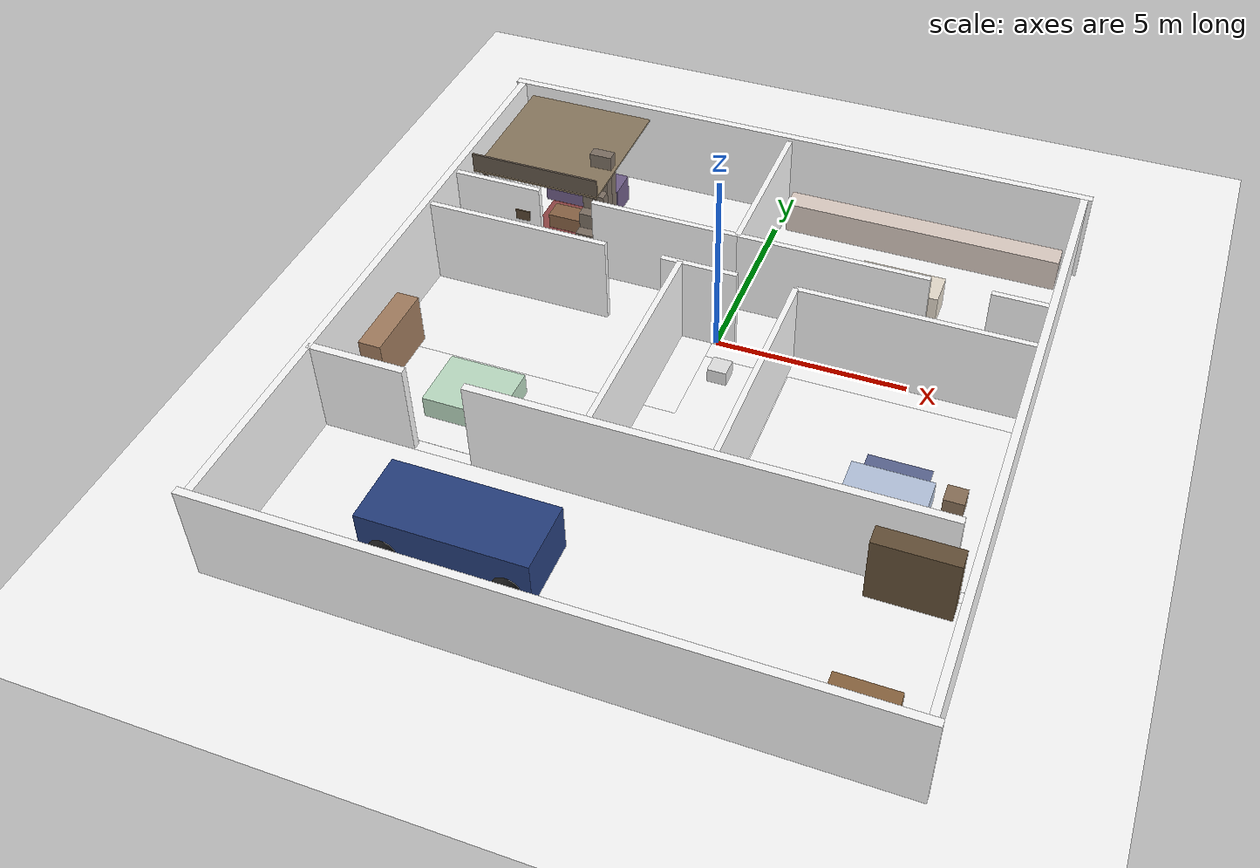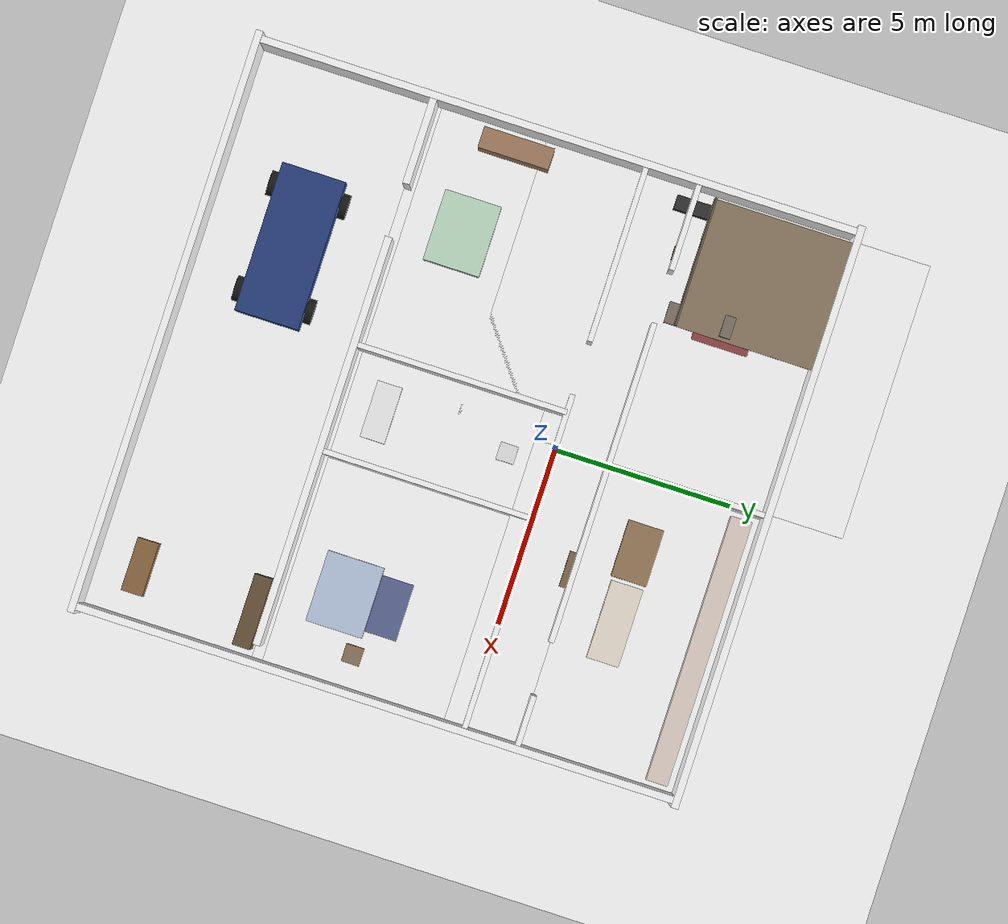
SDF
<sdf version="1.8">
 <world name="house">
  <physics name="4ms" type="ignored">
   <max_step_size>0.004</max_step_size>
   <real_time_factor>1</real_time_factor>
  </physics>
  <plugin filename="ignition-gazebo-physics-system" name="ignition::gazebo::systems::Physics"/>
  <plugin filename="ignition-gazebo-user-commands-system" name="ignition::gazebo::systems::UserCommands"/>
  <plugin filename="ignition-gazebo-scene-broadcaster-system" name="ignition::gazebo::systems::SceneBroadcaster"/>
  <plugin filename="ignition-gazebo-sensors-system" name="ignition::gazebo::systems::Sensors">
   <render_engine>ogre2</render_engine>
  </plugin>
  <plugin filename="ignition-gazebo-contact-system" name="ignition::gazebo::systems::Contact"/>
  <plugin filename="ignition-gazebo-imu-system" name="ignition::gazebo::systems::Imu"/>
  <light name="sun" type="directional">
   <pose>0 0 12 0 0 0</pose>
   <intensity>1</intensity>
   <direction>-0.3 0.1 -0.9</direction>
   <diffuse>1.0 0.97 0.90 1</diffuse>
   <specular>0.2 0.2 0.2 1</specular>
  </light>
  <light name="ceiling_living" type="point">
   <pose>-4 3 3 0 0 0</pose>
   <diffuse>0.9 0.85 0.75 1</diffuse>
   <specular>0.1 0.1 0.1 1</specular>
   <attenuation><range>12</range><linear>0.08</linear></attenuation>
  </light>
  <light name="ceiling_kitchen" type="point">
   <pose>4 4 3 0 0 0</pose>
   <diffuse>0.9 0.9 0.85 1</diffuse>
   <specular>0.1 0.1 0.1 1</specular>
   <attenuation><range>10</range><linear>0.1</linear></attenuation>
  </light>
  <light name="ceiling_hall" type="point">
   <pose>0 0.5 3 0 0 0</pose>
   <diffuse>0.8 0.8 0.8 1</diffuse>
   <specular>0.1 0.1 0.1 1</specular>
   <attenuation><range>12</range><linear>0.1</linear></attenuation>
  </light>
  <light name="ceiling_garage" type="point">
   <pose>0 -8.5 3 0 0 0</pose>
   <diffuse>0.75 0.75 0.78 1</diffuse>
   <specular>0.1 0.1 0.1 1</specular>
   <attenuation><range>16</range><linear>0.08</linear></attenuation>
  </light>
  <light name="ceiling_loft" type="point">
   <pose>-6 4 2.7 0 0 0</pose>
   <diffuse>0.85 0.82 0.72 1</diffuse>
   <specular>0.1 0.1 0.1 1</specular>
   <attenuation><range>8</range><linear>0.15</linear></attenuation>
  </light>
  <model name="ground_plane">
   <static>true</static>
   <link name="link">
    <collision name="c"><geometry><plane><normal>0 0 1</normal><size>100 100</size></plane></geometry></collision>
    <visual name="v">
     <geometry><plane><normal>0 0 1</normal><size>100 100</size></plane></geometry>
     <material>
      <ambient>0.6 0.6 0.6 1</ambient>
      <diffuse>1 1 1 1</diffuse>
      <pbr><metal><albedo_map>model://textures/concrete.png</albedo_map><roughness>0.9</roughness></metal></pbr>
     </material>
    </visual>
   </link>
  </model>
  <model name="floor_living">
   <static>true</static>
   <pose>-4 2.7 0.003 0 0 0</pose>
   <link name="link">
    <collision name="c"><geometry><box><size>7.8 11 0.004</size></box></geometry></collision>
    <visual name="v">
     <geometry><box><size>7.8 11 0.004</size></box></geometry>
     <material>
      <ambient>0.6 0.6 0.6 1</ambient>
      <diffuse>1 1 1 1</diffuse>
      <pbr><metal><albedo_map>model://textures/wood_plank.png</albedo_map><roughness>0.7</roughness></metal></pbr>
     </material>
    </visual>
   </link>
  </model>
  <model name="floor_kitchen">
   <static>true</static>
   <pose>4 3.7 0.003 0 0 0</pose>
   <link name="link">
    <collision name="c"><geometry><box><size>7.8 4.4 0.004</size></box></geometry></collision>
    <visual name="v">
     <geometry><box><size>7.8 4.4 0.004</size></box></geometry>
     <material>
      <ambient>0.6 0.6 0.6 1</ambient>
      <diffuse>1 1 1 1</diffuse>
      <pbr><metal><albedo_map>model://textures/tile_kitchen.png</albedo_map><roughness>0.5</roughness></metal></pbr>
     </material>
    </visual>
   </link>
  </model>
  <model name="floor_bed1">
   <static>true</static>
   <pose>5 -3.2 0.003 0 0 0</pose>
   <link name="link">
    <collision name="c"><geometry><box><size>5.8 5.2 0.004</size></box></geometry></collision>
    <visual name="v">
     <geometry><box><size>5.8 5.2 0.004</size></box></geometry>
     <material>
      <ambient>0.6 0.6 0.6 1</ambient>
      <diffuse>1 1 1 1</diffuse>
      <pbr><metal><albedo_map>model://textures/carpet_blue.png</albedo_map><roughness>0.95</roughness></metal></pbr>
     </material>
    </visual>
   </link>
  </model>
  <model name="floor_bed2">
   <static>true</static>
   <pose>-4.5 -3.2 0.003 0 0 0</pose>
   <link name="link">
    <collision name="c"><geometry><box><size>6.8 5.2 0.004</size></box></geometry></collision>
    <visual name="v">
     <geometry><box><size>6.8 5.2 0.004</size></box></geometry>
     <material>
      <ambient>0.6 0.6 0.6 1</ambient>
      <diffuse>1 1 1 1</diffuse>
      <pbr>
       <metal><albedo_map>model://textures/carpet_green.png</albedo_map><roughness>0.95</roughness></metal>
      </pbr>
     </material>
    </visual>
   </link>
  </model>
  <model name="floor_bath">
   <static>true</static>
   <pose>0.5 -3.2 0.003 0 0 0</pose>
   <link name="link">
    <collision name="c"><geometry><box><size>3 5.2 0.004</size></box></geometry></collision>
    <visual name="v">
     <geometry><box><size>3 5.2 0.004</size></box></geometry>
     <material>
      <ambient>0.6 0.6 0.6 1</ambient>
      <diffuse>1 1 1 1</diffuse>
      <pbr><metal><albedo_map>model://textures/tile_bath.png</albedo_map><roughness>0.5</roughness></metal></pbr>
     </material>
    </visual>
   </link>
  </model>
  <model name="floor_garage">
   <static>true</static>
   <pose>0 -8.5 0.003 0 0 0</pose>
   <link name="link">
    <collision name="c"><geometry><box><size>16 4.8 0.004</size></box></geometry></collision>
    <visual name="v">
     <geometry><box><size>16 4.8 0.004</size></box></geometry>
     <material>
      <ambient>0.6 0.6 0.6 1</ambient>
      <diffuse>1 1 1 1</diffuse>
      <pbr><metal><albedo_map>model://textures/concrete.png</albedo_map><roughness>0.9</roughness></metal></pbr>
     </material>
    </visual>
   </link>
  </model>
  <model name="wall_n">
   <static>true</static>
   <pose>0  6 1.25 0 0 0</pose>
   <link name="link">
    <collision name="c"><geometry><box><size>16.4 0.2 2.5</size></box></geometry></collision>
    <visual name="v">
     <geometry><box><size>16.4 0.2 2.5</size></box></geometry>
     <material>
      <ambient>0.6 0.6 0.6 1</ambient>
      <diffuse>1 1 1 1</diffuse>
      <pbr><metal><albedo_map>model://textures/drywall.png</albedo_map><roughness>0.85</roughness></metal></pbr>
     </material>
    </visual>
   </link>
  </model>
  <model name="wall_garage_n_a">
   <static>true</static>
   <pose>-6.75 -6 1.25 0 0 0</pose>
   <link name="link">
    <collision name="c"><geometry><box><size>2.5 0.2 2.5</size></box></geometry></collision>
    <visual name="v">
     <geometry><box><size>2.5 0.2 2.5</size></box></geometry>
     <material>
      <ambient>0.6 0.6 0.6 1</ambient>
      <diffuse>1 1 1 1</diffuse>
      <pbr><metal><albedo_map>model://textures/drywall.png</albedo_map><roughness>0.85</roughness></metal></pbr>
     </material>
    </visual>
   </link>
  </model>
  <model name="wall_garage_n_b">
   <static>true</static>
   <pose>1.75 -6 1.25 0 0 0</pose>
   <link name="link">
    <collision name="c"><geometry><box><size>11.5 0.2 2.5</size></box></geometry></collision>
    <visual name="v">
     <geometry><box><size>11.5 0.2 2.5</size></box></geometry>
     <material>
      <ambient>0.6 0.6 0.6 1</ambient>
      <diffuse>1 1 1 1</diffuse>
      <pbr><metal><albedo_map>model://textures/drywall.png</albedo_map><roughness>0.85</roughness></metal></pbr>
     </material>
    </visual>
   </link>
  </model>
  <model name="wall_s">
   <static>true</static>
   <pose>0 -11 1.3 0 0 0</pose>
   <link name="link">
    <collision name="c"><geometry><box><size>16.4 0.2 2.6</size></box></geometry></collision>
    <visual name="v">
     <geometry><box><size>16.4 0.2 2.6</size></box></geometry>
     <material>
      <ambient>0.6 0.6 0.6 1</ambient>
      <diffuse>1 1 1 1</diffuse>
      <pbr><metal><albedo_map>model://textures/concrete.png</albedo_map><roughness>0.9</roughness></metal></pbr>
     </material>
    </visual>
   </link>
  </model>
  <model name="wall_e">
   <static>true</static>
   <pose>8  -2.5 1.25 0 0 0</pose>
   <link name="link">
    <collision name="c"><geometry><box><size>0.2 17 2.5</size></box></geometry></collision>
    <visual name="v">
     <geometry><box><size>0.2 17 2.5</size></box></geometry>
     <material>
      <ambient>0.6 0.6 0.6 1</ambient>
      <diffuse>1 1 1 1</diffuse>
      <pbr><metal><albedo_map>model://textures/drywall.png</albedo_map><roughness>0.85</roughness></metal></pbr>
     </material>
    </visual>
   </link>
  </model>
  <model name="wall_w">
   <static>true</static>
   <pose>-8  -2.5 1.25 0 0 0</pose>
   <link name="link">
    <collision name="c"><geometry><box><size>0.2 17 2.5</size></box></geometry></collision>
    <visual name="v">
     <geometry><box><size>0.2 17 2.5</size></box></geometry>
     <material>
      <ambient>0.6 0.6 0.6 1</ambient>
      <diffuse>1 1 1 1</diffuse>
      <pbr><metal><albedo_map>model://textures/drywall.png</albedo_map><roughness>0.85</roughness></metal></pbr>
     </material>
    </visual>
   </link>
  </model>
  <model name="wall_A1">
   <static>true</static>
   <pose>-5.5 0 1.2 0 0 0</pose>
   <link name="link">
    <collision name="c"><geometry><box><size>5 0.15 2.4</size></box></geometry></collision>
    <visual name="v">
     <geometry><box><size>5 0.15 2.4</size></box></geometry>
     <material>
      <ambient>0.6 0.6 0.6 1</ambient>
      <diffuse>1 1 1 1</diffuse>
      <pbr><metal><albedo_map>model://textures/drywall.png</albedo_map><roughness>0.85</roughness></metal></pbr>
     </material>
    </visual>
   </link>
  </model>
  <model name="wall_A2">
   <static>true</static>
   <pose>-0.5 0 1.2 0 0 0</pose>
   <link name="link">
    <collision name="c"><geometry><box><size>2 0.15 2.4</size></box></geometry></collision>
    <visual name="v">
     <geometry><box><size>2 0.15 2.4</size></box></geometry>
     <material>
      <ambient>0.6 0.6 0.6 1</ambient>
      <diffuse>1 1 1 1</diffuse>
      <pbr><metal><albedo_map>model://textures/drywall.png</albedo_map><roughness>0.85</roughness></metal></pbr>
     </material>
    </visual>
   </link>
  </model>
  <model name="wall_A4">
   <static>true</static>
   <pose>5 0 1.2 0 0 0</pose>
   <link name="link">
    <collision name="c"><geometry><box><size>6 0.15 2.4</size></box></geometry></collision>
    <visual name="v">
     <geometry><box><size>6 0.15 2.4</size></box></geometry>
     <material>
      <ambient>0.6 0.6 0.6 1</ambient>
      <diffuse>1 1 1 1</diffuse>
      <pbr><metal><albedo_map>model://textures/drywall.png</albedo_map><roughness>0.85</roughness></metal></pbr>
     </material>
    </visual>
   </link>
  </model>
  <model name="wall_B1">
   <static>true</static>
   <pose>-6.75 1.5 1.2 0 0 0</pose>
   <link name="link">
    <collision name="c"><geometry><box><size>2.5 0.15 2.4</size></box></geometry></collision>
    <visual name="v">
     <geometry><box><size>2.5 0.15 2.4</size></box></geometry>
     <material>
      <ambient>0.6 0.6 0.6 1</ambient>
      <diffuse>1 1 1 1</diffuse>
      <pbr><metal><albedo_map>model://textures/drywall.png</albedo_map><roughness>0.85</roughness></metal></pbr>
     </material>
    </visual>
   </link>
  </model>
  <model name="wall_B2">
   <static>true</static>
   <pose>-2 1.5 1.2 0 0 0</pose>
   <link name="link">
    <collision name="c"><geometry><box><size>4 0.15 2.4</size></box></geometry></collision>
    <visual name="v">
     <geometry><box><size>4 0.15 2.4</size></box></geometry>
     <material>
      <ambient>0.6 0.6 0.6 1</ambient>
      <diffuse>1 1 1 1</diffuse>
      <pbr><metal><albedo_map>model://textures/drywall.png</albedo_map><roughness>0.85</roughness></metal></pbr>
     </material>
    </visual>
   </link>
  </model>
  <model name="wall_B3">
   <static>true</static>
   <pose>2.5 1.5 1.2 0 0 0</pose>
   <link name="link">
    <collision name="c"><geometry><box><size>5 0.15 2.4</size></box></geometry></collision>
    <visual name="v">
     <geometry><box><size>5 0.15 2.4</size></box></geometry>
     <material>
      <ambient>0.6 0.6 0.6 1</ambient>
      <diffuse>1 1 1 1</diffuse>
      <pbr><metal><albedo_map>model://textures/drywall.png</albedo_map><roughness>0.85</roughness></metal></pbr>
     </material>
    </visual>
   </link>
  </model>
  <model name="wall_B5">
   <static>true</static>
   <pose>7.25 1.5 1.2 0 0 0</pose>
   <link name="link">
    <collision name="c"><geometry><box><size>1.5 0.15 2.4</size></box></geometry></collision>
    <visual name="v">
     <geometry><box><size>1.5 0.15 2.4</size></box></geometry>
     <material>
      <ambient>0.6 0.6 0.6 1</ambient>
      <diffuse>1 1 1 1</diffuse>
      <pbr><metal><albedo_map>model://textures/drywall.png</albedo_map><roughness>0.85</roughness></metal></pbr>
     </material>
    </visual>
   </link>
  </model>
  <model name="wall_C">
   <static>true</static>
   <pose>0 3.75 1.2 0 0 0</pose>
   <link name="link">
    <collision name="c"><geometry><box><size>0.15 4.5 2.4</size></box></geometry></collision>
    <visual name="v">
     <geometry><box><size>0.15 4.5 2.4</size></box></geometry>
     <material>
      <ambient>0.6 0.6 0.6 1</ambient>
      <diffuse>1 1 1 1</diffuse>
      <pbr><metal><albedo_map>model://textures/drywall.png</albedo_map><roughness>0.85</roughness></metal></pbr>
     </material>
    </visual>
   </link>
  </model>
  <model name="wall_D">
   <static>true</static>
   <pose>-1 -3 1.2 0 0 0</pose>
   <link name="link">
    <collision name="c"><geometry><box><size>0.15 6 2.4</size></box></geometry></collision>
    <visual name="v">
     <geometry><box><size>0.15 6 2.4</size></box></geometry>
     <material>
      <ambient>0.6 0.6 0.6 1</ambient>
      <diffuse>1 1 1 1</diffuse>
      <pbr><metal><albedo_map>model://textures/drywall.png</albedo_map><roughness>0.85</roughness></metal></pbr>
     </material>
    </visual>
   </link>
  </model>
  <model name="wall_E">
   <static>true</static>
   <pose>2 -3 1.2 0 0 0</pose>
   <link name="link">
    <collision name="c"><geometry><box><size>0.15 6 2.4</size></box></geometry></collision>
    <visual name="v">
     <geometry><box><size>0.15 6 2.4</size></box></geometry>
     <material>
      <ambient>0.6 0.6 0.6 1</ambient>
      <diffuse>1 1 1 1</diffuse>
      <pbr><metal><albedo_map>model://textures/drywall.png</albedo_map><roughness>0.85</roughness></metal></pbr>
     </material>
    </visual>
   </link>
  </model>
  <model name="sofa">
   <static>true</static>
   <pose>-5.5 4.5 0.4 0 0 0</pose>
   <link name="link">
    <collision name="c"><geometry><box><size>2.2 0.8 0.8</size></box></geometry></collision>
    <visual name="v">
     <geometry><box><size>2.2 0.8 0.8</size></box></geometry>
     <material><ambient>0.45 0.38 0.55 1</ambient><diffuse>0.45 0.38 0.55 1</diffuse></material>
    </visual>
   </link>
  </model>
  <model name="coffee_table">
   <static>true</static>
   <pose>-5.5 3.2 0.22 0 0 0</pose>
   <link name="link">
    <collision name="c"><geometry><box><size>1.0 0.55 0.44</size></box></geometry></collision>
    <visual name="v">
     <geometry><box><size>1.0 0.55 0.44</size></box></geometry>
     <material><ambient>0.55 0.40 0.28 1</ambient><diffuse>0.55 0.40 0.28 1</diffuse></material>
    </visual>
   </link>
  </model>
  <model name="tv_stand">
   <static>true</static>
   <pose>-7.4 1.8 0.3 0 0 0</pose>
   <link name="link">
    <collision name="c"><geometry><box><size>0.4 1.5 0.6</size></box></geometry></collision>
    <visual name="v">
     <geometry><box><size>0.4 1.5 0.6</size></box></geometry>
     <material><ambient>0.2 0.2 0.2 1</ambient><diffuse>0.2 0.2 0.2 1</diffuse></material>
    </visual>
   </link>
  </model>
  <model name="counter_n">
   <static>true</static>
   <pose>4 5.4 0.45 0 0 0</pose>
   <link name="link">
    <collision name="c"><geometry><box><size>7.5 0.6 0.9</size></box></geometry></collision>
    <visual name="v">
     <geometry><box><size>7.5 0.6 0.9</size></box></geometry>
     <material><ambient>0.88 0.82 0.78 1</ambient><diffuse>0.88 0.82 0.78 1</diffuse></material>
    </visual>
   </link>
  </model>
  <model name="island">
   <static>true</static>
   <pose>4 3.0 0.45 0 0 0</pose>
   <link name="link">
    <collision name="c"><geometry><box><size>2.2 0.9 0.9</size></box></geometry></collision>
    <visual name="v">
     <geometry><box><size>2.2 0.9 0.9</size></box></geometry>
     <material><ambient>0.92 0.88 0.82 1</ambient><diffuse>0.92 0.88 0.82 1</diffuse></material>
    </visual>
   </link>
  </model>
  <model name="bed_1">
   <static>true</static>
   <pose>5.5 -4.2 0.3 0 0 0</pose>
   <link name="link">
    <collision name="c"><geometry><box><size>2.0 1.6 0.6</size></box></geometry></collision>
    <visual name="v">
     <geometry><box><size>2.0 1.6 0.6</size></box></geometry>
     <material><ambient>0.72 0.78 0.88 1</ambient><diffuse>0.72 0.78 0.88 1</diffuse></material>
    </visual>
   </link>
  </model>
  <model name="ns_1">
   <static>true</static>
   <pose>7.0 -3.5 0.25 0 0 0</pose>
   <link name="link">
    <collision name="c"><geometry><box><size>0.5 0.5 0.5</size></box></geometry></collision>
    <visual name="v">
     <geometry><box><size>0.5 0.5 0.5</size></box></geometry>
     <material><ambient>0.55 0.45 0.35 1</ambient><diffuse>0.55 0.45 0.35 1</diffuse></material>
    </visual>
   </link>
  </model>
  <model name="bed_2">
   <static>true</static>
   <pose>-4.8 -4.2 0.3 0 0 0</pose>
   <link name="link">
    <collision name="c"><geometry><box><size>2.0 1.6 0.6</size></box></geometry></collision>
    <visual name="v">
     <geometry><box><size>2.0 1.6 0.6</size></box></geometry>
     <material><ambient>0.75 0.88 0.78 1</ambient><diffuse>0.75 0.88 0.78 1</diffuse></material>
    </visual>
   </link>
  </model>
  <model name="wardrobe">
   <static>true</static>
   <pose>-7.4 -3.5 0.7 0 0 0</pose>
   <link name="link">
    <collision name="c"><geometry><box><size>0.6 2.0 1.4</size></box></geometry></collision>
    <visual name="v">
     <geometry><box><size>0.6 2.0 1.4</size></box></geometry>
     <material><ambient>0.65 0.50 0.38 1</ambient><diffuse>0.65 0.50 0.38 1</diffuse></material>
    </visual>
   </link>
  </model>
  <model name="bathtub">
   <static>true</static>
   <pose>0.5 -4.8 0.2 0 0 0</pose>
   <link name="link">
    <collision name="c"><geometry><box><size>1.6 0.7 0.4</size></box></geometry></collision>
    <visual name="v">
     <geometry><box><size>1.6 0.7 0.4</size></box></geometry>
     <material><ambient>0.95 0.95 0.95 1</ambient><diffuse>0.95 0.95 0.95 1</diffuse></material>
    </visual>
   </link>
  </model>
  <model name="toilet">
   <static>true</static>
   <pose>0.5 -1.2 0.2 0 0 0</pose>
   <link name="link">
    <collision name="c"><geometry><box><size>0.5 0.5 0.4</size></box></geometry></collision>
    <visual name="v">
     <geometry><box><size>0.5 0.5 0.4</size></box></geometry>
     <material><ambient>0.90 0.90 0.90 1</ambient><diffuse>0.90 0.90 0.90 1</diffuse></material>
    </visual>
   </link>
  </model>
  <model name="hall_picture_1">
   <static>true</static>
   <pose>-6 1.42 1.5 0 0 0</pose>
   <link name="link">
    <collision name="c"><geometry><box><size>0.4 0.05 0.3</size></box></geometry></collision>
    <visual name="v">
     <geometry><box><size>0.4 0.05 0.3</size></box></geometry>
     <material><ambient>0.35 0.28 0.2 1</ambient><diffuse>0.35 0.28 0.2 1</diffuse></material>
    </visual>
   </link>
  </model>
  <model name="hall_console">
   <static>true</static>
   <pose>3 1.4 0.4 0 0 0</pose>
   <link name="link">
    <collision name="c"><geometry><box><size>1.0 0.3 0.8</size></box></geometry></collision>
    <visual name="v">
     <geometry><box><size>1.0 0.3 0.8</size></box></geometry>
     <material><ambient>0.5 0.4 0.3 1</ambient><diffuse>0.5 0.4 0.3 1</diffuse></material>
    </visual>
   </link>
  </model>
  <model name="hall_picture_2">
   <static>true</static>
   <pose>6 -0.02 1.5 0 0 0</pose>
   <link name="link">
    <collision name="c"><geometry><box><size>0.4 0.05 0.3</size></box></geometry></collision>
    <visual name="v">
     <geometry><box><size>0.4 0.05 0.3</size></box></geometry>
     <material><ambient>0.35 0.28 0.2 1</ambient><diffuse>0.35 0.28 0.2 1</diffuse></material>
    </visual>
   </link>
  </model>
  <model name="loft_pole_1">
   <static>true</static>
   <pose>-7.5 2.3 1.05 0 0 0</pose>
   <link name="link">
    <collision name="c">
     <geometry><cylinder><radius>0.06</radius><length>2.1</length></cylinder></geometry>
    </collision>
    <visual name="v">
     <geometry><cylinder><radius>0.06</radius><length>2.1</length></cylinder></geometry>
     <material><ambient>0.4 0.35 0.3 1</ambient><diffuse>0.4 0.35 0.3 1</diffuse></material>
    </visual>
   </link>
  </model>
  <model name="loft_pole_2">
   <static>true</static>
   <pose>-4.3 2.3 1.05 0 0 0</pose>
   <link name="link">
    <collision name="c">
     <geometry><cylinder><radius>0.06</radius><length>2.1</length></cylinder></geometry>
    </collision>
    <visual name="v">
     <geometry><cylinder><radius>0.06</radius><length>2.1</length></cylinder></geometry>
     <material><ambient>0.4 0.35 0.3 1</ambient><diffuse>0.4 0.35 0.3 1</diffuse></material>
    </visual>
   </link>
  </model>
  <model name="loft_deck">
   <static>true</static>
   <pose>-5.9 3.95 2.125 0 0 0</pose>
   <link name="link">
    <collision name="c"><geometry><box><size>3.6 3.9 0.05</size></box></geometry></collision>
    <visual name="v">
     <geometry><box><size>3.6 3.9 0.05</size></box></geometry>
     <material><ambient>0.55 0.48 0.38 1</ambient><diffuse>0.55 0.48 0.38 1</diffuse></material>
    </visual>
   </link>
  </model>
  <model name="loft_rail">
   <static>true</static>
   <pose>-5.9 2.05 2.4 0 0 0</pose>
   <link name="link">
    <collision name="c"><geometry><box><size>3.6 0.05 0.5</size></box></geometry></collision>
    <visual name="v">
     <geometry><box><size>3.6 0.05 0.5</size></box></geometry>
     <material><ambient>0.4 0.35 0.3 1</ambient><diffuse>0.4 0.35 0.3 1</diffuse></material>
    </visual>
   </link>
  </model>
  <model name="stair_1">
   <static>true</static>
   <pose>-4.5 1.9 0.15 0 0 0</pose>
   <link name="link">
    <collision name="c"><geometry><box><size>0.6 0.3 0.3</size></box></geometry></collision>
    <visual name="v">
     <geometry><box><size>0.6 0.3 0.3</size></box></geometry>
     <material><ambient>0.5 0.45 0.4 1</ambient><diffuse>0.5 0.45 0.4 1</diffuse></material>
    </visual>
   </link>
  </model>
  <model name="stair_2">
   <static>true</static>
   <pose>-4.5 2.2 0.45 0 0 0</pose>
   <link name="link">
    <collision name="c"><geometry><box><size>0.6 0.3 0.6</size></box></geometry></collision>
    <visual name="v">
     <geometry><box><size>0.6 0.3 0.6</size></box></geometry>
     <material><ambient>0.5 0.45 0.4 1</ambient><diffuse>0.5 0.45 0.4 1</diffuse></material>
    </visual>
   </link>
  </model>
  <model name="stair_3">
   <static>true</static>
   <pose>-4.5 2.5 0.75 0 0 0</pose>
   <link name="link">
    <collision name="c"><geometry><box><size>0.6 0.3 0.9</size></box></geometry></collision>
    <visual name="v">
     <geometry><box><size>0.6 0.3 0.9</size></box></geometry>
     <material><ambient>0.5 0.45 0.4 1</ambient><diffuse>0.5 0.45 0.4 1</diffuse></material>
    </visual>
   </link>
  </model>
  <model name="stair_4">
   <static>true</static>
   <pose>-4.5 2.8 1.05 0 0 0</pose>
   <link name="link">
    <collision name="c"><geometry><box><size>0.6 0.3 1.2</size></box></geometry></collision>
    <visual name="v">
     <geometry><box><size>0.6 0.3 1.2</size></box></geometry>
     <material><ambient>0.5 0.45 0.4 1</ambient><diffuse>0.5 0.45 0.4 1</diffuse></material>
    </visual>
   </link>
  </model>
  <model name="stair_5">
   <static>true</static>
   <pose>-4.5 3.1 1.35 0 0 0</pose>
   <link name="link">
    <collision name="c"><geometry><box><size>0.6 0.3 1.5</size></box></geometry></collision>
    <visual name="v">
     <geometry><box><size>0.6 0.3 1.5</size></box></geometry>
     <material><ambient>0.5 0.45 0.4 1</ambient><diffuse>0.5 0.45 0.4 1</diffuse></material>
    </visual>
   </link>
  </model>
  <model name="stair_6">
   <static>true</static>
   <pose>-4.5 3.4 1.65 0 0 0</pose>
   <link name="link">
    <collision name="c"><geometry><box><size>0.6 0.3 1.8</size></box></geometry></collision>
    <visual name="v">
     <geometry><box><size>0.6 0.3 1.8</size></box></geometry>
     <material><ambient>0.5 0.45 0.4 1</ambient><diffuse>0.5 0.45 0.4 1</diffuse></material>
    </visual>
   </link>
  </model>
  <model name="dining_table">
   <static>true</static>
   <pose>2 3 0.375 0 0 0</pose>
   <link name="link">
    <collision name="c"><geometry><box><size>1.6 1.0 0.75</size></box></geometry></collision>
    <visual name="v">
     <geometry><box><size>1.6 1.0 0.75</size></box></geometry>
     <material><ambient>0.6 0.48 0.35 1</ambient><diffuse>0.6 0.48 0.35 1</diffuse></material>
    </visual>
   </link>
  </model>
  <model name="rug_living">
   <static>true</static>
   <pose>-5.2 3.4 0.006 0 0 0</pose>
   <link name="link">
    <collision name="c"><geometry><box><size>2.4 1.6 0.01</size></box></geometry></collision>
    <visual name="v">
     <geometry><box><size>2.4 1.6 0.01</size></box></geometry>
     <material><ambient>0.55 0.2 0.2 0.85</ambient><diffuse>0.55 0.2 0.2 0.85</diffuse></material>
    </visual>
   </link>
  </model>
  <model name="rug_bed1">
   <static>true</static>
   <pose>5.5 -3.0 0.006 0 0 0</pose>
   <link name="link">
    <collision name="c"><geometry><box><size>1.6 1.0 0.01</size></box></geometry></collision>
    <visual name="v">
     <geometry><box><size>1.6 1.0 0.01</size></box></geometry>
     <material><ambient>0.3 0.35 0.55 0.85</ambient><diffuse>0.3 0.35 0.55 0.85</diffuse></material>
    </visual>
   </link>
  </model>
  <model name="car_body">
   <static>true</static>
   <pose>-3 -8.5 0.65 0 0 0</pose>
   <link name="link">
    <collision name="c"><geometry><box><size>4.2 1.8 1.3</size></box></geometry></collision>
    <visual name="v">
     <geometry><box><size>4.2 1.8 1.3</size></box></geometry>
     <material><ambient>0.15 0.25 0.5 1</ambient><diffuse>0.15 0.25 0.5 1</diffuse></material>
    </visual>
   </link>
  </model>
  <model name="car_wheel_fl">
   <static>true</static>
   <pose>-4.5 -7.5 0.35 1.5708 0 0</pose>
   <link name="link">
    <collision name="c">
     <geometry><cylinder><radius>0.35</radius><length>0.25</length></cylinder></geometry>
    </collision>
    <visual name="v">
     <geometry><cylinder><radius>0.35</radius><length>0.25</length></cylinder></geometry>
     <material><ambient>0.1 0.1 0.1 1</ambient><diffuse>0.1 0.1 0.1 1</diffuse></material>
    </visual>
   </link>
  </model>
  <model name="car_wheel_fr">
   <static>true</static>
   <pose>-4.5 -9.5 0.35 1.5708 0 0</pose>
   <link name="link">
    <collision name="c">
     <geometry><cylinder><radius>0.35</radius><length>0.25</length></cylinder></geometry>
    </collision>
    <visual name="v">
     <geometry><cylinder><radius>0.35</radius><length>0.25</length></cylinder></geometry>
     <material><ambient>0.1 0.1 0.1 1</ambient><diffuse>0.1 0.1 0.1 1</diffuse></material>
    </visual>
   </link>
  </model>
  <model name="car_wheel_rl">
   <static>true</static>
   <pose>-1.5 -7.5 0.35 1.5708 0 0</pose>
   <link name="link">
    <collision name="c">
     <geometry><cylinder><radius>0.35</radius><length>0.25</length></cylinder></geometry>
    </collision>
    <visual name="v">
     <geometry><cylinder><radius>0.35</radius><length>0.25</length></cylinder></geometry>
     <material><ambient>0.1 0.1 0.1 1</ambient><diffuse>0.1 0.1 0.1 1</diffuse></material>
    </visual>
   </link>
  </model>
  <model name="car_wheel_rr">
   <static>true</static>
   <pose>-1.5 -9.5 0.35 1.5708 0 0</pose>
   <link name="link">
    <collision name="c">
     <geometry><cylinder><radius>0.35</radius><length>0.25</length></cylinder></geometry>
    </collision>
    <visual name="v">
     <geometry><cylinder><radius>0.35</radius><length>0.25</length></cylinder></geometry>
     <material><ambient>0.1 0.1 0.1 1</ambient><diffuse>0.1 0.1 0.1 1</diffuse></material>
    </visual>
   </link>
  </model>
  <model name="garage_shelf">
   <static>true</static>
   <pose>6.7 -6.4 0.9 0 0 0</pose>
   <link name="link">
    <collision name="c"><geometry><box><size>2.0 0.5 1.8</size></box></geometry></collision>
    <visual name="v">
     <geometry><box><size>2.0 0.5 1.8</size></box></geometry>
     <material><ambient>0.4 0.32 0.22 1</ambient><diffuse>0.4 0.32 0.22 1</diffuse></material>
    </visual>
   </link>
  </model>
  <model name="garage_workbench">
   <static>true</static>
   <pose>6.5 -9.7 0.45 0 0 0</pose>
   <link name="link">
    <collision name="c"><geometry><box><size>1.5 0.6 0.9</size></box></geometry></collision>
    <visual name="v">
     <geometry><box><size>1.5 0.6 0.9</size></box></geometry>
     <material><ambient>0.55 0.4 0.25 1</ambient><diffuse>0.55 0.4 0.25 1</diffuse></material>
    </visual>
   </link>
  </model>
  <model name="world_monitor_cam">
   <static>true</static>
   <pose>7.5 7.0 5.3 0 0.55 -2.356</pose>
   <link name="link">
    <sensor name="monitor_camera" type="camera">
     <always_on>true</always_on>
     <update_rate>10</update_rate>
     <topic>world_monitor/image_raw</topic>
     <camera>
      <horizontal_fov>1.3</horizontal_fov>
      <image><width>960</width><height>540</height><format>R8G8B8</format></image>
      <clip><near>0.05</near><far>35.0</far></clip>
     </camera>
    </sensor>
   </link>
  </model>
 </world>
</sdf>
